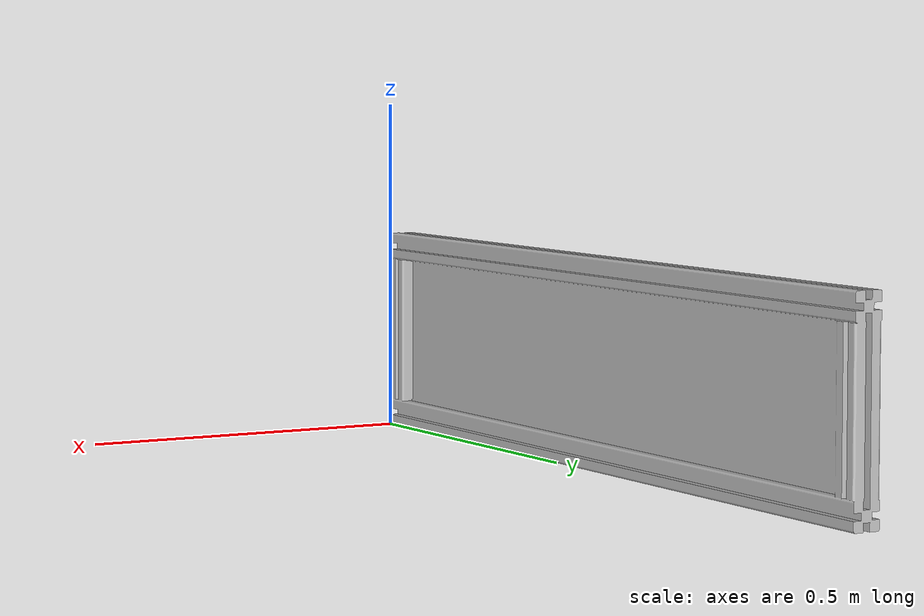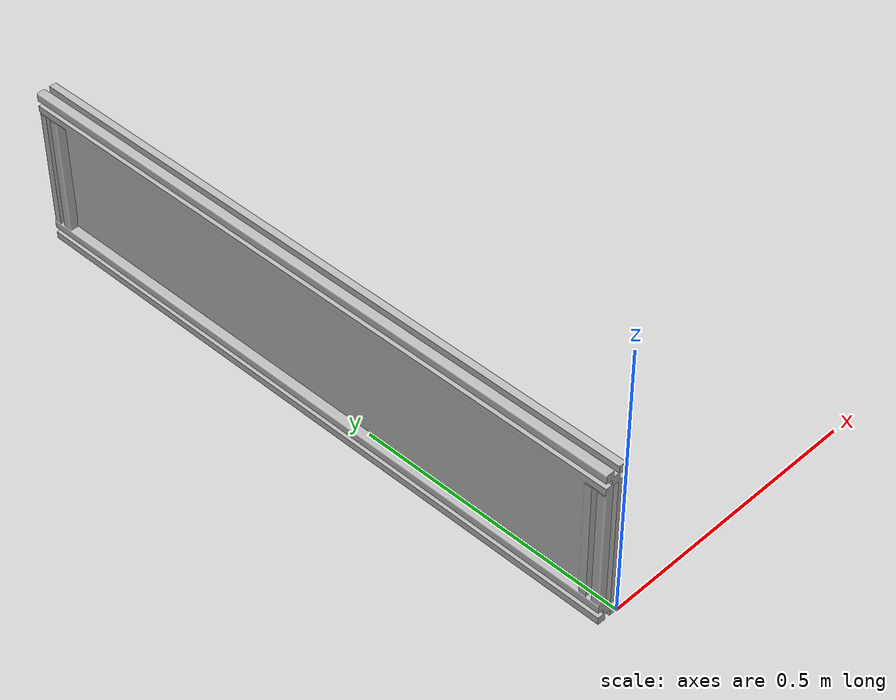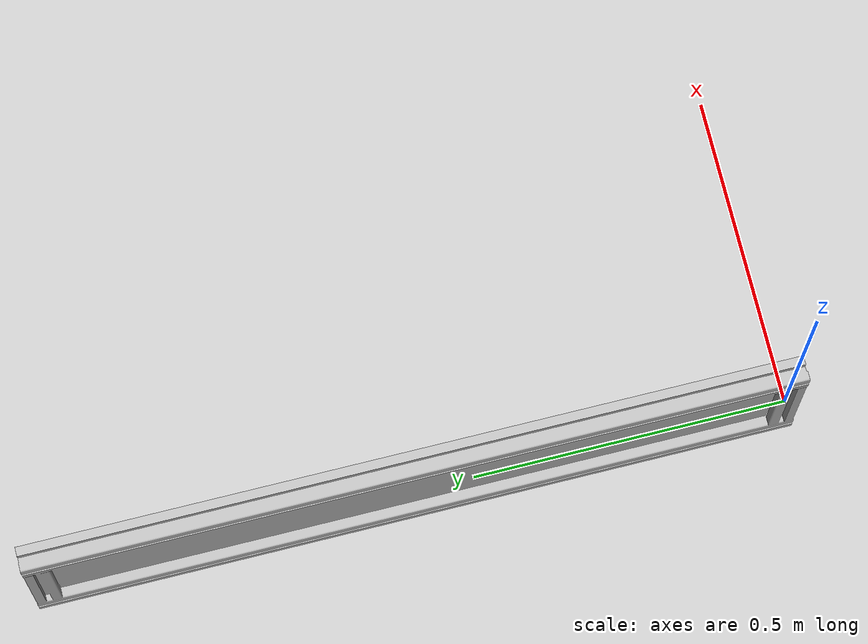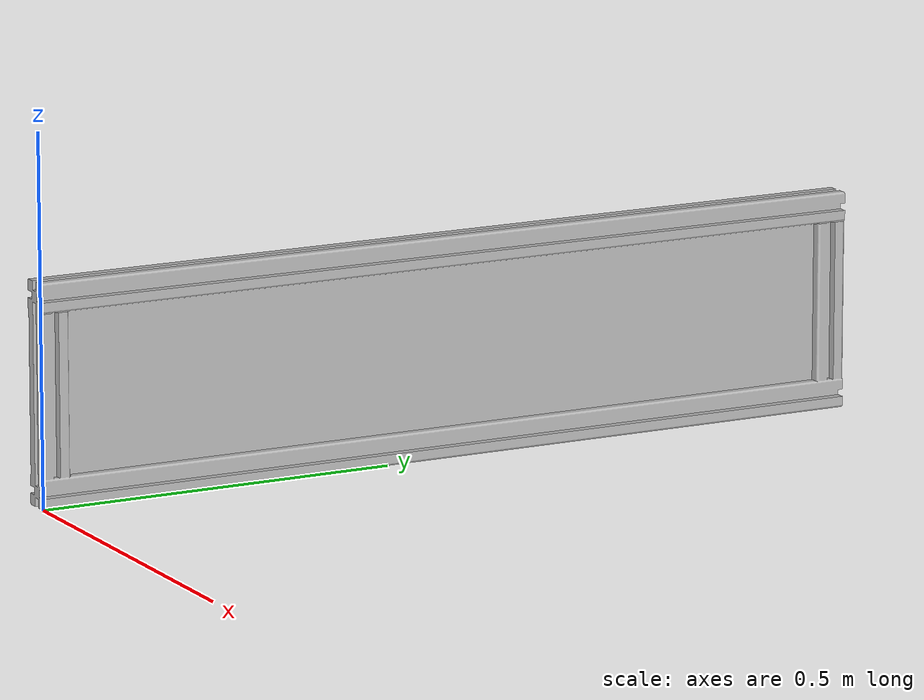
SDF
<?xml version="1.0" ?>
<sdf version="1.3">
  <model name="Wall_1200x300x40">
    <static>true</static>
    <link name="link">
      <pose>0 0 0 0 0 0</pose>
      <collision name="collision">
        <geometry>
          <mesh>
            <uri>model://wall_1200x300x40/meshes/wall_1200x300x40.dae</uri>
          </mesh>
        </geometry>
      </collision>
      <visual name="visual">
        <geometry>
          <mesh>
            <uri>model://wall_1200x300x40/meshes/wall_1200x300x40.dae</uri>
          </mesh>
        </geometry>
      </visual>
    </link>
  </model>
</sdf>
